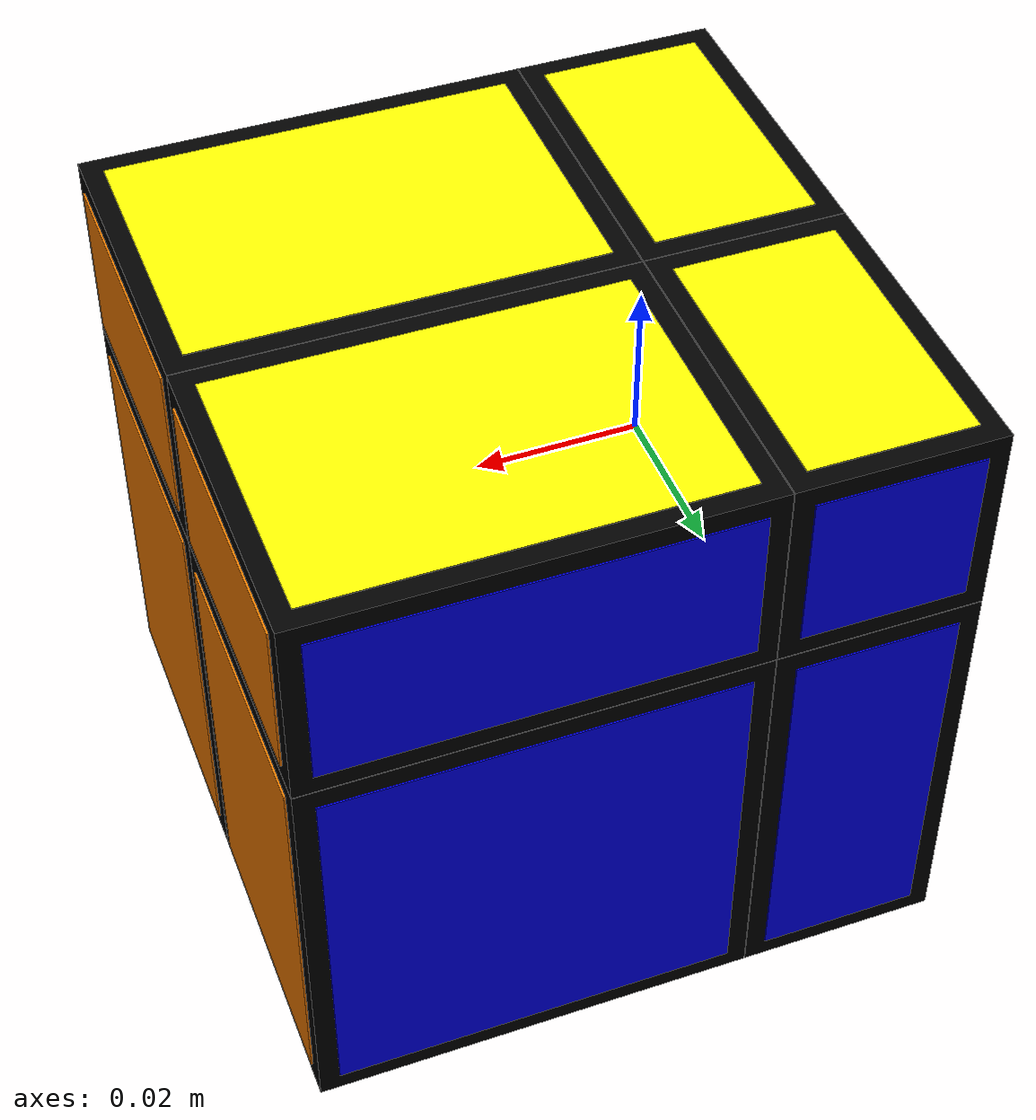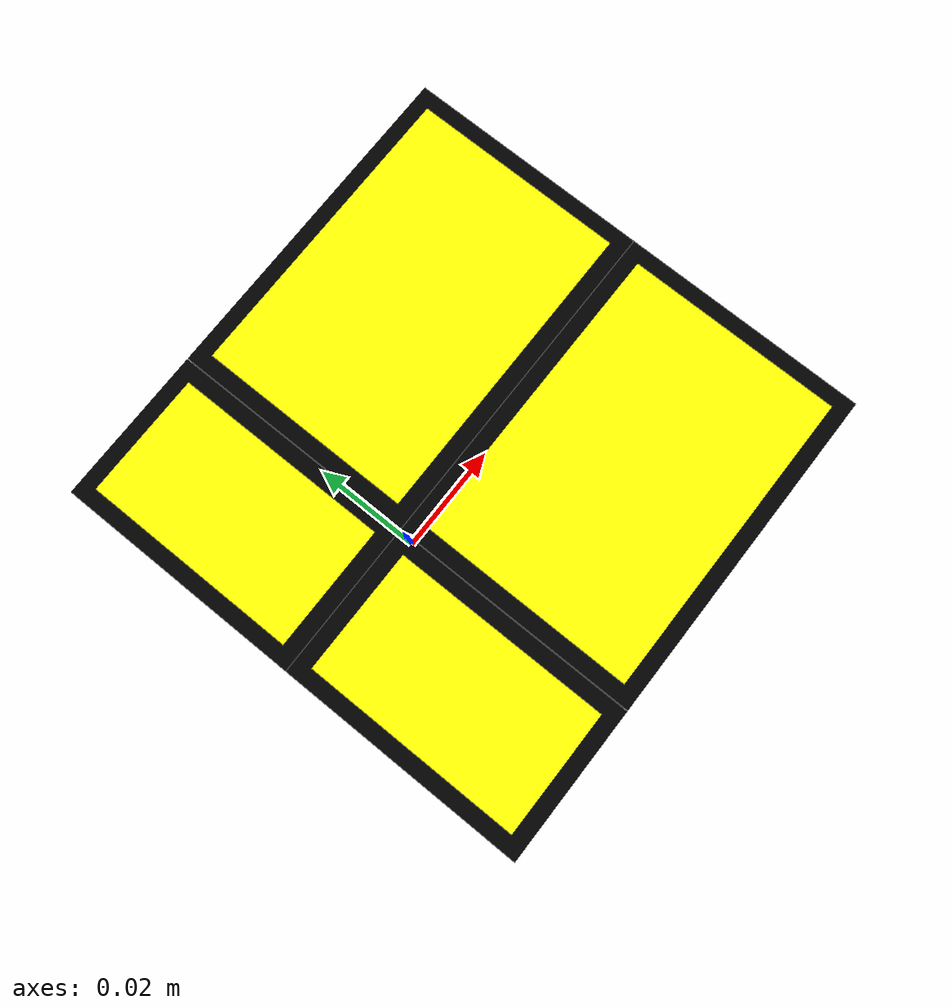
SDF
<?xml version="1.0" ?>
<sdf version="1.7">
	<model name="mirror_cube_2x2">
		<link name="center"/>
		<link name="cubie_0_0_0">
			<pose>-0.01255 -0.020050000000000002 -0.02755 0.0 0.0 0.0</pose>
			<inertial>
				<mass>0.02145</mass>
				<inertia>
					<ixx>8.2671875e-06</ixx>
					<ixy>0.0</ixy>
					<ixz>0.0</ixz>
					<iyy>6.5243750000000005e-06</iyy>
					<iyz>0.0</iyz>
					<izz>3.977187500000001e-06</izz>
				</inertia>
			</inertial>
			<collision name="collision">
				<geometry>
					<box>
						<size>0.025 0.04 0.055</size>
					</box>
				</geometry>
				<surface>
					<friction>
						<ode>
							<mu>0.6</mu>
							<mu2>0.6</mu2>
						</ode>
					</friction>
				</surface>
			</collision>
			<visual name="black">
				<geometry>
					<box>
						<size>0.025 0.04 0.055</size>
					</box>
				</geometry>
				<material>
					<diffuse>0 0 0 1</diffuse>
				</material>
			</visual>
			<visual name="red">
				<pose>-0.0125 0.0 0.0 0.0 0.0 0.0</pose>
				<geometry>
					<box>
						<size>0.0002 0.035 0.05</size>
					</box>
				</geometry>
				<material>
					<diffuse>1 0 0 1</diffuse>
				</material>
			</visual>
			<visual name="green">
				<pose>0.0 -0.02 0.0 0.0 0.0 0.0</pose>
				<geometry>
					<box>
						<size>0.02 0.00035 0.05</size>
					</box>
				</geometry>
				<material>
					<diffuse>0 1 0 1</diffuse>
				</material>
			</visual>
			<visual name="white">
				<pose>0.0 0.0 -0.0275 0.0 0.0 0.0</pose>
				<geometry>
					<box>
						<size>0.02 0.035 0.0005</size>
					</box>
				</geometry>
				<material>
					<diffuse>1 1 1 1</diffuse>
				</material>
			</visual>
		</link>
		<joint name="ball_0_0_0" type="ball">
			<pose>0.01255 0.020050000000000002 0.02755 -0.0 -0.0 -0.0</pose>
			<parent>center</parent>
			<child>cubie_0_0_0</child>
			<axis>
				<dynamics>
					<damping>0.1</damping>
				</dynamics>
				<limit>
					<effort>0</effort>
				</limit>
			</axis>
		</joint>
		<link name="cubie_0_0_1">
			<pose>-0.01255 -0.020050000000000002 0.01255 0.0 0.0 0.0</pose>
			<inertial>
				<mass>0.00975</mass>
				<inertia>
					<ixx>1.8078125000000003e-06</ixx>
					<ixy>0.0</ixy>
					<ixz>0.0</ixz>
					<iyy>1.0156250000000001e-06</iyy>
					<iyz>0.0</iyz>
					<izz>1.8078125000000003e-06</izz>
				</inertia>
			</inertial>
			<collision name="collision">
				<geometry>
					<box>
						<size>0.025 0.04 0.025</size>
					</box>
				</geometry>
				<surface>
					<friction>
						<ode>
							<mu>0.6</mu>
							<mu2>0.6</mu2>
						</ode>
					</friction>
				</surface>
			</collision>
			<visual name="black">
				<geometry>
					<box>
						<size>0.025 0.04 0.025</size>
					</box>
				</geometry>
				<material>
					<diffuse>0 0 0 1</diffuse>
				</material>
			</visual>
			<visual name="red">
				<pose>-0.0125 0.0 0.0 0.0 0.0 0.0</pose>
				<geometry>
					<box>
						<size>0.0002 0.035 0.02</size>
					</box>
				</geometry>
				<material>
					<diffuse>1 0 0 1</diffuse>
				</material>
			</visual>
			<visual name="green">
				<pose>0.0 -0.02 0.0 0.0 0.0 0.0</pose>
				<geometry>
					<box>
						<size>0.02 0.00035 0.02</size>
					</box>
				</geometry>
				<material>
					<diffuse>0 1 0 1</diffuse>
				</material>
			</visual>
			<visual name="yellow">
				<pose>0.0 0.0 0.0125 0.0 0.0 0.0</pose>
				<geometry>
					<box>
						<size>0.02 0.035 0.0002</size>
					</box>
				</geometry>
				<material>
					<diffuse>1 1 0 1</diffuse>
				</material>
			</visual>
		</link>
		<joint name="ball_0_0_1" type="ball">
			<pose>0.01255 0.020050000000000002 -0.01255 -0.0 -0.0 -0.0</pose>
			<parent>center</parent>
			<child>cubie_0_0_1</child>
			<axis>
				<dynamics>
					<damping>0.1</damping>
				</dynamics>
				<limit>
					<effort>0</effort>
				</limit>
			</axis>
		</joint>
		<link name="cubie_0_1_0">
			<pose>-0.01255 0.020050000000000002 -0.02755 0.0 0.0 0.0</pose>
			<inertial>
				<mass>0.02145</mass>
				<inertia>
					<ixx>8.2671875e-06</ixx>
					<ixy>0.0</ixy>
					<ixz>0.0</ixz>
					<iyy>6.5243750000000005e-06</iyy>
					<iyz>0.0</iyz>
					<izz>3.977187500000001e-06</izz>
				</inertia>
			</inertial>
			<collision name="collision">
				<geometry>
					<box>
						<size>0.025 0.04 0.055</size>
					</box>
				</geometry>
				<surface>
					<friction>
						<ode>
							<mu>0.6</mu>
							<mu2>0.6</mu2>
						</ode>
					</friction>
				</surface>
			</collision>
			<visual name="black">
				<geometry>
					<box>
						<size>0.025 0.04 0.055</size>
					</box>
				</geometry>
				<material>
					<diffuse>0 0 0 1</diffuse>
				</material>
			</visual>
			<visual name="red">
				<pose>-0.0125 0.0 0.0 0.0 0.0 0.0</pose>
				<geometry>
					<box>
						<size>0.0002 0.035 0.05</size>
					</box>
				</geometry>
				<material>
					<diffuse>1 0 0 1</diffuse>
				</material>
			</visual>
			<visual name="blue">
				<pose>0.0 0.02 0.0 0.0 0.0 0.0</pose>
				<geometry>
					<box>
						<size>0.02 0.00035 0.05</size>
					</box>
				</geometry>
				<material>
					<diffuse>0 0 1 1</diffuse>
				</material>
			</visual>
			<visual name="white">
				<pose>0.0 0.0 -0.0275 0.0 0.0 0.0</pose>
				<geometry>
					<box>
						<size>0.02 0.035 0.0005</size>
					</box>
				</geometry>
				<material>
					<diffuse>1 1 1 1</diffuse>
				</material>
			</visual>
		</link>
		<joint name="ball_0_1_0" type="ball">
			<pose>0.01255 -0.020050000000000002 0.02755 -0.0 -0.0 -0.0</pose>
			<parent>center</parent>
			<child>cubie_0_1_0</child>
			<axis>
				<dynamics>
					<damping>0.1</damping>
				</dynamics>
				<limit>
					<effort>0</effort>
				</limit>
			</axis>
		</joint>
		<link name="cubie_0_1_1">
			<pose>-0.01255 0.020050000000000002 0.01255 0.0 0.0 0.0</pose>
			<inertial>
				<mass>0.00975</mass>
				<inertia>
					<ixx>1.8078125000000003e-06</ixx>
					<ixy>0.0</ixy>
					<ixz>0.0</ixz>
					<iyy>1.0156250000000001e-06</iyy>
					<iyz>0.0</iyz>
					<izz>1.8078125000000003e-06</izz>
				</inertia>
			</inertial>
			<collision name="collision">
				<geometry>
					<box>
						<size>0.025 0.04 0.025</size>
					</box>
				</geometry>
				<surface>
					<friction>
						<ode>
							<mu>0.6</mu>
							<mu2>0.6</mu2>
						</ode>
					</friction>
				</surface>
			</collision>
			<visual name="black">
				<geometry>
					<box>
						<size>0.025 0.04 0.025</size>
					</box>
				</geometry>
				<material>
					<diffuse>0 0 0 1</diffuse>
				</material>
			</visual>
			<visual name="red">
				<pose>-0.0125 0.0 0.0 0.0 0.0 0.0</pose>
				<geometry>
					<box>
						<size>0.0002 0.035 0.02</size>
					</box>
				</geometry>
				<material>
					<diffuse>1 0 0 1</diffuse>
				</material>
			</visual>
			<visual name="blue">
				<pose>0.0 0.02 0.0 0.0 0.0 0.0</pose>
				<geometry>
					<box>
						<size>0.02 0.00035 0.02</size>
					</box>
				</geometry>
				<material>
					<diffuse>0 0 1 1</diffuse>
				</material>
			</visual>
			<visual name="yellow">
				<pose>0.0 0.0 0.0125 0.0 0.0 0.0</pose>
				<geometry>
					<box>
						<size>0.02 0.035 0.0002</size>
					</box>
				</geometry>
				<material>
					<diffuse>1 1 0 1</diffuse>
				</material>
			</visual>
		</link>
		<joint name="ball_0_1_1" type="ball">
			<pose>0.01255 -0.020050000000000002 -0.01255 -0.0 -0.0 -0.0</pose>
			<parent>center</parent>
			<child>cubie_0_1_1</child>
			<axis>
				<dynamics>
					<damping>0.1</damping>
				</dynamics>
				<limit>
					<effort>0</effort>
				</limit>
			</axis>
		</joint>
		<link name="cubie_1_0_0">
			<pose>0.02755 -0.020050000000000002 -0.02755 0.0 0.0 0.0</pose>
			<inertial>
				<mass>0.04719</mass>
				<inertia>
					<ixx>1.81878125e-05</ixx>
					<ixy>0.0</ixy>
					<ixz>0.0</ixz>
					<iyy>2.3791625e-05</iyy>
					<iyz>0.0</iyz>
					<izz>1.81878125e-05</izz>
				</inertia>
			</inertial>
			<collision name="collision">
				<geometry>
					<box>
						<size>0.055 0.04 0.055</size>
					</box>
				</geometry>
				<surface>
					<friction>
						<ode>
							<mu>0.6</mu>
							<mu2>0.6</mu2>
						</ode>
					</friction>
				</surface>
			</collision>
			<visual name="black">
				<geometry>
					<box>
						<size>0.055 0.04 0.055</size>
					</box>
				</geometry>
				<material>
					<diffuse>0 0 0 1</diffuse>
				</material>
			</visual>
			<visual name="orange">
				<pose>0.0275 0.0 0.0 0.0 0.0 0.0</pose>
				<geometry>
					<box>
						<size>0.0005 0.035 0.05</size>
					</box>
				</geometry>
				<material>
					<diffuse>1.0 0.5 0.0 1.0</diffuse>
				</material>
			</visual>
			<visual name="green">
				<pose>0.0 -0.02 0.0 0.0 0.0 0.0</pose>
				<geometry>
					<box>
						<size>0.05 0.00035 0.05</size>
					</box>
				</geometry>
				<material>
					<diffuse>0 1 0 1</diffuse>
				</material>
			</visual>
			<visual name="white">
				<pose>0.0 0.0 -0.0275 0.0 0.0 0.0</pose>
				<geometry>
					<box>
						<size>0.05 0.035 0.0005</size>
					</box>
				</geometry>
				<material>
					<diffuse>1 1 1 1</diffuse>
				</material>
			</visual>
		</link>
		<joint name="ball_1_0_0" type="ball">
			<pose>-0.02755 0.020050000000000002 0.02755 -0.0 -0.0 -0.0</pose>
			<parent>center</parent>
			<child>cubie_1_0_0</child>
			<axis>
				<dynamics>
					<damping>0.1</damping>
				</dynamics>
				<limit>
					<effort>0</effort>
				</limit>
			</axis>
		</joint>
		<link name="cubie_1_0_1">
			<pose>0.02755 -0.020050000000000002 0.01255 0.0 0.0 0.0</pose>
			<inertial>
				<mass>0.021450000000000004</mass>
				<inertia>
					<ixx>3.9771875000000015e-06</ixx>
					<ixy>0.0</ixy>
					<ixz>0.0</ixz>
					<iyy>6.5243750000000005e-06</iyy>
					<iyz>0.0</iyz>
					<izz>8.2671875e-06</izz>
				</inertia>
			</inertial>
			<collision name="collision">
				<geometry>
					<box>
						<size>0.055 0.04 0.025</size>
					</box>
				</geometry>
				<surface>
					<friction>
						<ode>
							<mu>0.6</mu>
							<mu2>0.6</mu2>
						</ode>
					</friction>
				</surface>
			</collision>
			<visual name="black">
				<geometry>
					<box>
						<size>0.055 0.04 0.025</size>
					</box>
				</geometry>
				<material>
					<diffuse>0 0 0 1</diffuse>
				</material>
			</visual>
			<visual name="orange">
				<pose>0.0275 0.0 0.0 0.0 0.0 0.0</pose>
				<geometry>
					<box>
						<size>0.0005 0.035 0.02</size>
					</box>
				</geometry>
				<material>
					<diffuse>1.0 0.5 0.0 1.0</diffuse>
				</material>
			</visual>
			<visual name="green">
				<pose>0.0 -0.02 0.0 0.0 0.0 0.0</pose>
				<geometry>
					<box>
						<size>0.05 0.00035 0.02</size>
					</box>
				</geometry>
				<material>
					<diffuse>0 1 0 1</diffuse>
				</material>
			</visual>
			<visual name="yellow">
				<pose>0.0 0.0 0.0125 0.0 0.0 0.0</pose>
				<geometry>
					<box>
						<size>0.05 0.035 0.0002</size>
					</box>
				</geometry>
				<material>
					<diffuse>1 1 0 1</diffuse>
				</material>
			</visual>
		</link>
		<joint name="ball_1_0_1" type="ball">
			<pose>-0.02755 0.020050000000000002 -0.01255 -0.0 -0.0 -0.0</pose>
			<parent>center</parent>
			<child>cubie_1_0_1</child>
			<axis>
				<dynamics>
					<damping>0.1</damping>
				</dynamics>
				<limit>
					<effort>0</effort>
				</limit>
			</axis>
		</joint>
		<link name="cubie_1_1_0">
			<pose>0.02755 0.020050000000000002 -0.02755 0.0 0.0 0.0</pose>
			<inertial>
				<mass>0.04719</mass>
				<inertia>
					<ixx>1.81878125e-05</ixx>
					<ixy>0.0</ixy>
					<ixz>0.0</ixz>
					<iyy>2.3791625e-05</iyy>
					<iyz>0.0</iyz>
					<izz>1.81878125e-05</izz>
				</inertia>
			</inertial>
			<collision name="collision">
				<geometry>
					<box>
						<size>0.055 0.04 0.055</size>
					</box>
				</geometry>
				<surface>
					<friction>
						<ode>
							<mu>0.6</mu>
							<mu2>0.6</mu2>
						</ode>
					</friction>
				</surface>
			</collision>
			<visual name="black">
				<geometry>
					<box>
						<size>0.055 0.04 0.055</size>
					</box>
				</geometry>
				<material>
					<diffuse>0 0 0 1</diffuse>
				</material>
			</visual>
			<visual name="orange">
				<pose>0.0275 0.0 0.0 0.0 0.0 0.0</pose>
				<geometry>
					<box>
						<size>0.0005 0.035 0.05</size>
					</box>
				</geometry>
				<material>
					<diffuse>1.0 0.5 0.0 1.0</diffuse>
				</material>
			</visual>
			<visual name="blue">
				<pose>0.0 0.02 0.0 0.0 0.0 0.0</pose>
				<geometry>
					<box>
						<size>0.05 0.00035 0.05</size>
					</box>
				</geometry>
				<material>
					<diffuse>0 0 1 1</diffuse>
				</material>
			</visual>
			<visual name="white">
				<pose>0.0 0.0 -0.0275 0.0 0.0 0.0</pose>
				<geometry>
					<box>
						<size>0.05 0.035 0.0005</size>
					</box>
				</geometry>
				<material>
					<diffuse>1 1 1 1</diffuse>
				</material>
			</visual>
		</link>
		<joint name="ball_1_1_0" type="ball">
			<pose>-0.02755 -0.020050000000000002 0.02755 -0.0 -0.0 -0.0</pose>
			<parent>center</parent>
			<child>cubie_1_1_0</child>
			<axis>
				<dynamics>
					<damping>0.1</damping>
				</dynamics>
				<limit>
					<effort>0</effort>
				</limit>
			</axis>
		</joint>
		<link name="cubie_1_1_1">
			<pose>0.02755 0.020050000000000002 0.01255 0.0 0.0 0.0</pose>
			<inertial>
				<mass>0.021450000000000004</mass>
				<inertia>
					<ixx>3.9771875000000015e-06</ixx>
					<ixy>0.0</ixy>
					<ixz>0.0</ixz>
					<iyy>6.5243750000000005e-06</iyy>
					<iyz>0.0</iyz>
					<izz>8.2671875e-06</izz>
				</inertia>
			</inertial>
			<collision name="collision">
				<geometry>
					<box>
						<size>0.055 0.04 0.025</size>
					</box>
				</geometry>
				<surface>
					<friction>
						<ode>
							<mu>0.6</mu>
							<mu2>0.6</mu2>
						</ode>
					</friction>
				</surface>
			</collision>
			<visual name="black">
				<geometry>
					<box>
						<size>0.055 0.04 0.025</size>
					</box>
				</geometry>
				<material>
					<diffuse>0 0 0 1</diffuse>
				</material>
			</visual>
			<visual name="orange">
				<pose>0.0275 0.0 0.0 0.0 0.0 0.0</pose>
				<geometry>
					<box>
						<size>0.0005 0.035 0.02</size>
					</box>
				</geometry>
				<material>
					<diffuse>1.0 0.5 0.0 1.0</diffuse>
				</material>
			</visual>
			<visual name="blue">
				<pose>0.0 0.02 0.0 0.0 0.0 0.0</pose>
				<geometry>
					<box>
						<size>0.05 0.00035 0.02</size>
					</box>
				</geometry>
				<material>
					<diffuse>0 0 1 1</diffuse>
				</material>
			</visual>
			<visual name="yellow">
				<pose>0.0 0.0 0.0125 0.0 0.0 0.0</pose>
				<geometry>
					<box>
						<size>0.05 0.035 0.0002</size>
					</box>
				</geometry>
				<material>
					<diffuse>1 1 0 1</diffuse>
				</material>
			</visual>
		</link>
		<joint name="ball_1_1_1" type="ball">
			<pose>-0.02755 -0.020050000000000002 -0.01255 -0.0 -0.0 -0.0</pose>
			<parent>center</parent>
			<child>cubie_1_1_1</child>
			<axis>
				<dynamics>
					<damping>0.1</damping>
				</dynamics>
				<limit>
					<effort>0</effort>
				</limit>
			</axis>
		</joint>
	</model>
</sdf>
